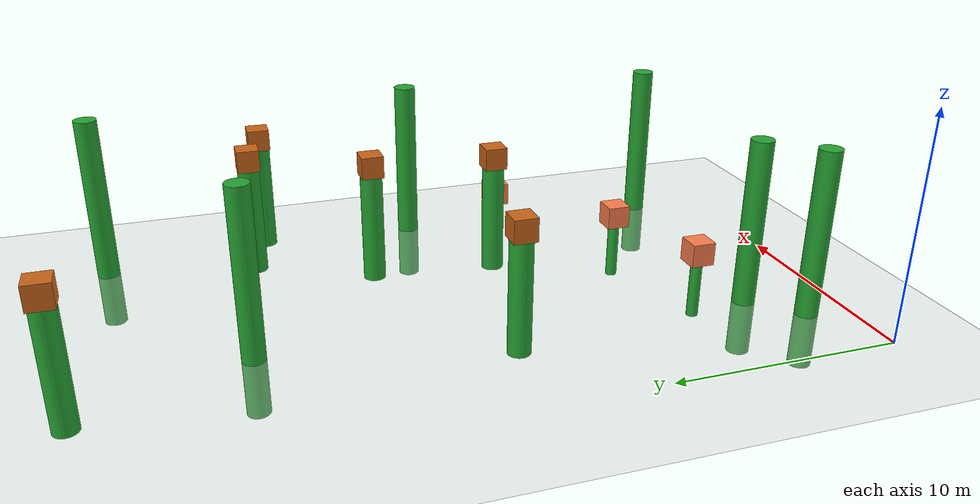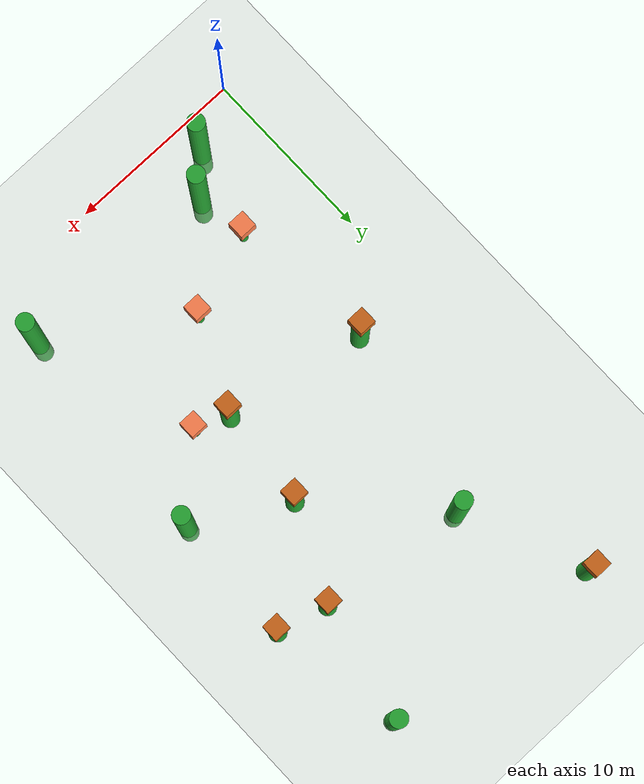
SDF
<sdf version="1.7">
 <world name="default">
  <model name="ground_plane">
   <static>1</static>
   <link name="link">
    <collision name="collision">
     <geometry><plane><normal>0 0 1</normal><size>100 100</size></plane></geometry>
     <surface>
      <contact><collide_bitmask>65535</collide_bitmask></contact>
      <friction><ode><mu>100</mu><mu2>50</mu2></ode></friction>
     </surface>
    </collision>
    <visual name="visual">
     <cast_shadows>0</cast_shadows>
     <geometry><plane><normal>0 0 1</normal><size>100 100</size></plane></geometry>
     <material>
      <script><uri>file://media/materials/scripts/gazebo.material</uri><name>Gazebo/Grey</name></script>
     </material>
    </visual>
   </link>
  </model>
  <model name="unit_cylinder_green_2_clone_clone_11">
   <link name="link">
    <inertial>
     <mass>1</mass>
     <inertia><ixx>0.145833</ixx><ixy>0</ixy><ixz>0</ixz><iyy>0.145833</iyy><iyz>0</iyz><izz>0.125</izz></inertia>
    </inertial>
    <visual name="visual">
     <geometry><cylinder><radius>0.5</radius><length>10</length></cylinder></geometry>
     <material>
      <script><name>Gazebo/Green</name><uri>file://media/materials/scripts/gazebo.material</uri></script>
      <shader type="pixel"><normal_map>__default__</normal_map></shader>
      <ambient>0 1 0.3 1</ambient>
      <diffuse>0.7 0.7 0.7 1</diffuse>
      <specular>0.01 0.01 0.01 1</specular>
      <emissive>0 0 0 1</emissive>
     </material>
    </visual>
    <collision name="collision">
     <geometry><cylinder><radius>0.5</radius><length>5</length></cylinder></geometry>
     <surface>
      <friction>
       <ode><mu>1</mu><mu2>1</mu2><fdir1>0 0 0</fdir1><slip1>0</slip1><slip2>0</slip2></ode>
       <torsional>
        <coefficient>1</coefficient>
        <patch_radius>0</patch_radius>
        <surface_radius>0</surface_radius>
        <use_patch_radius>1</use_patch_radius>
        <ode><slip>0</slip></ode>
       </torsional>
      </friction>
      <bounce><restitution_coefficient>0</restitution_coefficient><threshold>1e+06</threshold></bounce>
      <contact>
       <collide_without_contact>0</collide_without_contact>
       <collide_without_contact_bitmask>1</collide_without_contact_bitmask>
       <collide_bitmask>1</collide_bitmask>
       <ode>
        <soft_cfm>0</soft_cfm>
        <soft_erp>0.2</soft_erp>
        <kp>1e+13</kp>
        <kd>1</kd>
        <max_vel>0.01</max_vel>
        <min_depth>0</min_depth>
       </ode>
       <bullet>
        <split_impulse>1</split_impulse>
        <split_impulse_penetration_threshold>-0.01</split_impulse_penetration_threshold>
        <soft_cfm>0</soft_cfm>
        <soft_erp>0.2</soft_erp>
        <kp>1e+13</kp>
        <kd>1</kd>
       </bullet>
      </contact>
     </surface>
    </collision>
   </link>
   <static>1</static>
   <pose>6.6281 25.0703 2.5 0 0 -0.000967</pose>
  </model>
  <model name="unit_cylinder_green_2_clone_clone_17">
   <link name="link">
    <inertial>
     <mass>1</mass>
     <inertia><ixx>0.145833</ixx><ixy>0</ixy><ixz>0</ixz><iyy>0.145833</iyy><iyz>0</iyz><izz>0.125</izz></inertia>
    </inertial>
    <visual name="visual">
     <geometry><cylinder><radius>0.5</radius><length>10</length></cylinder></geometry>
     <material>
      <script><name>Gazebo/Green</name><uri>file://media/materials/scripts/gazebo.material</uri></script>
      <shader type="pixel"><normal_map>__default__</normal_map></shader>
      <ambient>0 1 0.3 1</ambient>
      <diffuse>0.7 0.7 0.7 1</diffuse>
      <specular>0.01 0.01 0.01 1</specular>
      <emissive>0 0 0 1</emissive>
     </material>
    </visual>
    <collision name="collision">
     <geometry><cylinder><radius>0.5</radius><length>5</length></cylinder></geometry>
     <surface>
      <friction>
       <ode><mu>1</mu><mu2>1</mu2><fdir1>0 0 0</fdir1><slip1>0</slip1><slip2>0</slip2></ode>
       <torsional>
        <coefficient>1</coefficient>
        <patch_radius>0</patch_radius>
        <surface_radius>0</surface_radius>
        <use_patch_radius>1</use_patch_radius>
        <ode><slip>0</slip></ode>
       </torsional>
      </friction>
      <bounce><restitution_coefficient>0</restitution_coefficient><threshold>1e+06</threshold></bounce>
      <contact>
       <collide_without_contact>0</collide_without_contact>
       <collide_without_contact_bitmask>1</collide_without_contact_bitmask>
       <collide_bitmask>1</collide_bitmask>
       <ode>
        <soft_cfm>0</soft_cfm>
        <soft_erp>0.2</soft_erp>
        <kp>1e+13</kp>
        <kd>1</kd>
        <max_vel>0.01</max_vel>
        <min_depth>0</min_depth>
       </ode>
       <bullet>
        <split_impulse>1</split_impulse>
        <split_impulse_penetration_threshold>-0.01</split_impulse_penetration_threshold>
        <soft_cfm>0</soft_cfm>
        <soft_erp>0.2</soft_erp>
        <kp>1e+13</kp>
        <kd>1</kd>
       </bullet>
      </contact>
     </surface>
    </collision>
   </link>
   <static>1</static>
   <pose>16.5379 3.56067 2.5 0 0 -0.000967</pose>
  </model>
  <model name="unit_cylinder_green_2_clone_clone_18">
   <link name="link">
    <inertial>
     <mass>1</mass>
     <inertia><ixx>0.145833</ixx><ixy>0</ixy><ixz>0</ixz><iyy>0.145833</iyy><iyz>0</iyz><izz>0.125</izz></inertia>
    </inertial>
    <visual name="visual">
     <geometry><cylinder><radius>0.5</radius><length>10</length></cylinder></geometry>
     <material>
      <script><name>Gazebo/Green</name><uri>file://media/materials/scripts/gazebo.material</uri></script>
      <shader type="pixel"><normal_map>__default__</normal_map></shader>
      <ambient>0 1 0.3 1</ambient>
      <diffuse>0.7 0.7 0.7 1</diffuse>
      <specular>0.01 0.01 0.01 1</specular>
      <emissive>0 0 0 1</emissive>
     </material>
    </visual>
    <collision name="collision">
     <geometry><cylinder><radius>0.5</radius><length>5</length></cylinder></geometry>
     <surface>
      <friction>
       <ode><mu>1</mu><mu2>1</mu2><fdir1>0 0 0</fdir1><slip1>0</slip1><slip2>0</slip2></ode>
       <torsional>
        <coefficient>1</coefficient>
        <patch_radius>0</patch_radius>
        <surface_radius>0</surface_radius>
        <use_patch_radius>1</use_patch_radius>
        <ode><slip>0</slip></ode>
       </torsional>
      </friction>
      <bounce><restitution_coefficient>0</restitution_coefficient><threshold>1e+06</threshold></bounce>
      <contact>
       <collide_without_contact>0</collide_without_contact>
       <collide_without_contact_bitmask>1</collide_without_contact_bitmask>
       <collide_bitmask>1</collide_bitmask>
       <ode>
        <soft_cfm>0</soft_cfm>
        <soft_erp>0.2</soft_erp>
        <kp>1e+13</kp>
        <kd>1</kd>
        <max_vel>0.01</max_vel>
        <min_depth>0</min_depth>
       </ode>
       <bullet>
        <split_impulse>1</split_impulse>
        <split_impulse_penetration_threshold>-0.01</split_impulse_penetration_threshold>
        <soft_cfm>0</soft_cfm>
        <soft_erp>0.2</soft_erp>
        <kp>1e+13</kp>
        <kd>1</kd>
       </bullet>
      </contact>
     </surface>
    </collision>
   </link>
   <static>1</static>
   <pose>17.402 16.0401 2.5 0 0 -0.000967</pose>
  </model>
  <model name="unit_cylinder_green_2_clone_clone_19">
   <link name="link">
    <inertial>
     <mass>1</mass>
     <inertia><ixx>0.145833</ixx><ixy>0</ixy><ixz>0</ixz><iyy>0.145833</iyy><iyz>0</iyz><izz>0.125</izz></inertia>
    </inertial>
    <visual name="visual">
     <geometry><cylinder><radius>0.5</radius><length>10</length></cylinder></geometry>
     <material>
      <script><name>Gazebo/Green</name><uri>file://media/materials/scripts/gazebo.material</uri></script>
      <shader type="pixel"><normal_map>__default__</normal_map></shader>
      <ambient>0 1 0.3 1</ambient>
      <diffuse>0.7 0.7 0.7 1</diffuse>
      <specular>0.01 0.01 0.01 1</specular>
      <emissive>0 0 0 1</emissive>
     </material>
    </visual>
    <collision name="collision">
     <geometry><cylinder><radius>0.5</radius><length>5</length></cylinder></geometry>
     <surface>
      <friction>
       <ode><mu>1</mu><mu2>1</mu2><fdir1>0 0 0</fdir1><slip1>0</slip1><slip2>0</slip2></ode>
       <torsional>
        <coefficient>1</coefficient>
        <patch_radius>0</patch_radius>
        <surface_radius>0</surface_radius>
        <use_patch_radius>1</use_patch_radius>
        <ode><slip>0</slip></ode>
       </torsional>
      </friction>
      <bounce><restitution_coefficient>0</restitution_coefficient><threshold>1e+06</threshold></bounce>
      <contact>
       <collide_without_contact>0</collide_without_contact>
       <collide_without_contact_bitmask>1</collide_without_contact_bitmask>
       <collide_bitmask>1</collide_bitmask>
       <ode>
        <soft_cfm>0</soft_cfm>
        <soft_erp>0.2</soft_erp>
        <kp>1e+13</kp>
        <kd>1</kd>
        <max_vel>0.01</max_vel>
        <min_depth>0</min_depth>
       </ode>
       <bullet>
        <split_impulse>1</split_impulse>
        <split_impulse_penetration_threshold>-0.01</split_impulse_penetration_threshold>
        <soft_cfm>0</soft_cfm>
        <soft_erp>0.2</soft_erp>
        <kp>1e+13</kp>
        <kd>1</kd>
       </bullet>
      </contact>
     </surface>
    </collision>
   </link>
   <static>1</static>
   <pose>16.3785 30.7272 2.5 0 0 -0.000967</pose>
  </model>
  <model name="unit_cylinder_green_2_clone_clone_3_clone">
   <link name="link">
    <inertial>
     <mass>1</mass>
     <inertia><ixx>0.145833</ixx><ixy>0</ixy><ixz>0</ixz><iyy>0.145833</iyy><iyz>0</iyz><izz>0.125</izz></inertia>
    </inertial>
    <visual name="visual">
     <geometry><cylinder><radius>0.5</radius><length>10</length></cylinder></geometry>
     <material>
      <script><name>Gazebo/Green</name><uri>file://media/materials/scripts/gazebo.material</uri></script>
      <shader type="pixel"><normal_map>__default__</normal_map></shader>
      <ambient>0 1 0.3 1</ambient>
      <diffuse>0.7 0.7 0.7 1</diffuse>
      <specular>0.01 0.01 0.01 1</specular>
      <emissive>0 0 0 1</emissive>
     </material>
    </visual>
    <collision name="collision">
     <geometry><cylinder><radius>0.5</radius><length>5</length></cylinder></geometry>
     <surface>
      <friction>
       <ode><mu>1</mu><mu2>1</mu2><fdir1>0 0 0</fdir1><slip1>0</slip1><slip2>0</slip2></ode>
       <torsional>
        <coefficient>1</coefficient>
        <patch_radius>0</patch_radius>
        <surface_radius>0</surface_radius>
        <use_patch_radius>1</use_patch_radius>
        <ode><slip>0</slip></ode>
       </torsional>
      </friction>
      <bounce><restitution_coefficient>0</restitution_coefficient><threshold>1e+06</threshold></bounce>
      <contact>
       <collide_without_contact>0</collide_without_contact>
       <collide_without_contact_bitmask>1</collide_without_contact_bitmask>
       <collide_bitmask>1</collide_bitmask>
       <ode>
        <soft_cfm>0</soft_cfm>
        <soft_erp>0.2</soft_erp>
        <kp>1e+13</kp>
        <kd>1</kd>
        <max_vel>0.01</max_vel>
        <min_depth>0</min_depth>
       </ode>
       <bullet>
        <split_impulse>1</split_impulse>
        <split_impulse_penetration_threshold>-0.01</split_impulse_penetration_threshold>
        <soft_cfm>0</soft_cfm>
        <soft_erp>0.2</soft_erp>
        <kp>1e+13</kp>
        <kd>1</kd>
       </bullet>
      </contact>
     </surface>
    </collision>
   </link>
   <static>1</static>
   <pose>3.32613 1.87442 2.5 0 0 -0.000949</pose>
  </model>
  <model name="unit_cylinder_green_2_clone_clone_3_clone_clone">
   <link name="link">
    <inertial>
     <mass>1</mass>
     <inertia><ixx>0.145833</ixx><ixy>0</ixy><ixz>0</ixz><iyy>0.145833</iyy><iyz>0</iyz><izz>0.125</izz></inertia>
    </inertial>
    <visual name="visual">
     <geometry><cylinder><radius>0.5</radius><length>10</length></cylinder></geometry>
     <material>
      <script><name>Gazebo/Green</name><uri>file://media/materials/scripts/gazebo.material</uri></script>
      <shader type="pixel"><normal_map>__default__</normal_map></shader>
      <ambient>0 1 0.3 1</ambient>
      <diffuse>0.7 0.7 0.7 1</diffuse>
      <specular>0.01 0.01 0.01 1</specular>
      <emissive>0 0 0 1</emissive>
     </material>
    </visual>
    <collision name="collision">
     <geometry><cylinder><radius>0.5</radius><length>5</length></cylinder></geometry>
     <surface>
      <friction>
       <ode><mu>1</mu><mu2>1</mu2><fdir1>0 0 0</fdir1><slip1>0</slip1><slip2>0</slip2></ode>
       <torsional>
        <coefficient>1</coefficient>
        <patch_radius>0</patch_radius>
        <surface_radius>0</surface_radius>
        <use_patch_radius>1</use_patch_radius>
        <ode><slip>0</slip></ode>
       </torsional>
      </friction>
      <bounce><restitution_coefficient>0</restitution_coefficient><threshold>1e+06</threshold></bounce>
      <contact>
       <collide_without_contact>0</collide_without_contact>
       <collide_without_contact_bitmask>1</collide_without_contact_bitmask>
       <collide_bitmask>1</collide_bitmask>
       <ode>
        <soft_cfm>0</soft_cfm>
        <soft_erp>0.2</soft_erp>
        <kp>1e+13</kp>
        <kd>1</kd>
        <max_vel>0.01</max_vel>
        <min_depth>0</min_depth>
       </ode>
       <bullet>
        <split_impulse>1</split_impulse>
        <split_impulse_penetration_threshold>-0.01</split_impulse_penetration_threshold>
        <soft_cfm>0</soft_cfm>
        <soft_erp>0.2</soft_erp>
        <kp>1e+13</kp>
        <kd>1</kd>
       </bullet>
      </contact>
     </surface>
    </collision>
   </link>
   <static>1</static>
   <pose>5.14953 3.84567 2.5 0 0 -0.000933</pose>
  </model>
  <model name="unit_cylinder_green_2_clone_clone_3_clone_0_clone_0_clone_3">
   <link name="link">
    <inertial>
     <mass>1</mass>
     <inertia><ixx>0.145833</ixx><ixy>0</ixy><ixz>0</ixz><iyy>0.145833</iyy><iyz>0</iyz><izz>0.125</izz></inertia>
    </inertial>
    <visual name="visual">
     <geometry><cylinder><radius>0.5</radius><length>5</length></cylinder></geometry>
     <material>
      <script><name>Gazebo/Green</name><uri>file://media/materials/scripts/gazebo.material</uri></script>
      <shader type="pixel"><normal_map>__default__</normal_map></shader>
      <ambient>0 1 0.3 1</ambient>
      <diffuse>0.7 0.7 0.7 1</diffuse>
      <specular>0.01 0.01 0.01 1</specular>
      <emissive>0 0 0 1</emissive>
     </material>
    </visual>
    <collision name="collision">
     <geometry><cylinder><radius>0.5</radius><length>5</length></cylinder></geometry>
     <surface>
      <friction>
       <ode><mu>1</mu><mu2>1</mu2><fdir1>0 0 0</fdir1><slip1>0</slip1><slip2>0</slip2></ode>
       <torsional>
        <coefficient>1</coefficient>
        <patch_radius>0</patch_radius>
        <surface_radius>0</surface_radius>
        <use_patch_radius>1</use_patch_radius>
        <ode><slip>0</slip></ode>
       </torsional>
      </friction>
      <bounce><restitution_coefficient>0</restitution_coefficient><threshold>1e+06</threshold></bounce>
      <contact>
       <collide_without_contact>0</collide_without_contact>
       <collide_without_contact_bitmask>1</collide_without_contact_bitmask>
       <collide_bitmask>1</collide_bitmask>
       <ode>
        <soft_cfm>0</soft_cfm>
        <soft_erp>0.2</soft_erp>
        <kp>1e+13</kp>
        <kd>1</kd>
        <max_vel>0.01</max_vel>
        <min_depth>0</min_depth>
       </ode>
       <bullet>
        <split_impulse>1</split_impulse>
        <split_impulse_penetration_threshold>-0.01</split_impulse_penetration_threshold>
        <soft_cfm>0</soft_cfm>
        <soft_erp>0.2</soft_erp>
        <kp>1e+13</kp>
        <kd>1</kd>
       </bullet>
      </contact>
     </surface>
    </collision>
   </link>
   <link name="link_3">
    <inertial>
     <mass>1</mass>
     <inertia>
      <ixx>0.166667</ixx>
      <ixy>0</ixy>
      <ixz>0</ixz>
      <iyy>0.166667</iyy>
      <iyz>0</iyz>
      <izz>0.166667</izz>
     </inertia>
    </inertial>
    <pose>0 0 3 0 -0 0.000935</pose>
    <visual name="visual">
     <geometry><box><size>1 1 1</size></box></geometry>
     <material>
      <lighting>1</lighting>
      <script><uri>file://media/materials/scripts/gazebo.material</uri><name>Gazebo/Grey</name></script>
      <shader type="pixel"><normal_map>__default__</normal_map></shader>
      <ambient>0.8 0.4 0.1 1</ambient>
      <diffuse>0.7 0.7 0.7 1</diffuse>
      <specular>0.01 0.01 0.01 1</specular>
      <emissive>0 0 0 1</emissive>
     </material>
    </visual>
    <collision name="collision">
     <geometry><box><size>1 1 1</size></box></geometry>
     <surface>
      <friction>
       <ode><mu>1</mu><mu2>1</mu2><fdir1>0 0 0</fdir1><slip1>0</slip1><slip2>0</slip2></ode>
       <torsional>
        <coefficient>1</coefficient>
        <patch_radius>0</patch_radius>
        <surface_radius>0</surface_radius>
        <use_patch_radius>1</use_patch_radius>
        <ode><slip>0</slip></ode>
       </torsional>
      </friction>
      <bounce><restitution_coefficient>0</restitution_coefficient><threshold>1e+06</threshold></bounce>
      <contact>
       <collide_without_contact>0</collide_without_contact>
       <collide_without_contact_bitmask>1</collide_without_contact_bitmask>
       <collide_bitmask>1</collide_bitmask>
       <ode>
        <soft_cfm>0</soft_cfm>
        <soft_erp>0.2</soft_erp>
        <kp>1e+13</kp>
        <kd>1</kd>
        <max_vel>0.01</max_vel>
        <min_depth>0</min_depth>
       </ode>
       <bullet>
        <split_impulse>1</split_impulse>
        <split_impulse_penetration_threshold>-0.01</split_impulse_penetration_threshold>
        <soft_cfm>0</soft_cfm>
        <soft_erp>0.2</soft_erp>
        <kp>1e+13</kp>
        <kd>1</kd>
       </bullet>
      </contact>
     </surface>
    </collision>
   </link>
   <static>1</static>
   <pose>14.8559 24.0346 2.49999 0 0 -0.000935</pose>
  </model>
  <model name="unit_cylinder_green_2_clone_clone_3_clone_0_clone_0_clone_30">
   <link name="link">
    <inertial>
     <mass>1</mass>
     <inertia><ixx>0.145833</ixx><ixy>0</ixy><ixz>0</ixz><iyy>0.145833</iyy><iyz>0</iyz><izz>0.125</izz></inertia>
    </inertial>
    <visual name="visual">
     <geometry><cylinder><radius>0.5</radius><length>5</length></cylinder></geometry>
     <material>
      <script><name>Gazebo/Green</name><uri>file://media/materials/scripts/gazebo.material</uri></script>
      <shader type="pixel"><normal_map>__default__</normal_map></shader>
      <ambient>0 1 0.3 1</ambient>
      <diffuse>0.7 0.7 0.7 1</diffuse>
      <specular>0.01 0.01 0.01 1</specular>
      <emissive>0 0 0 1</emissive>
     </material>
    </visual>
    <collision name="collision">
     <geometry><cylinder><radius>0.5</radius><length>5</length></cylinder></geometry>
     <surface>
      <friction>
       <ode><mu>1</mu><mu2>1</mu2><fdir1>0 0 0</fdir1><slip1>0</slip1><slip2>0</slip2></ode>
       <torsional>
        <coefficient>1</coefficient>
        <patch_radius>0</patch_radius>
        <surface_radius>0</surface_radius>
        <use_patch_radius>1</use_patch_radius>
        <ode><slip>0</slip></ode>
       </torsional>
      </friction>
      <bounce><restitution_coefficient>0</restitution_coefficient><threshold>1e+06</threshold></bounce>
      <contact>
       <collide_without_contact>0</collide_without_contact>
       <collide_without_contact_bitmask>1</collide_without_contact_bitmask>
       <collide_bitmask>1</collide_bitmask>
       <ode>
        <soft_cfm>0</soft_cfm>
        <soft_erp>0.2</soft_erp>
        <kp>1e+13</kp>
        <kd>1</kd>
        <max_vel>0.01</max_vel>
        <min_depth>0</min_depth>
       </ode>
       <bullet>
        <split_impulse>1</split_impulse>
        <split_impulse_penetration_threshold>-0.01</split_impulse_penetration_threshold>
        <soft_cfm>0</soft_cfm>
        <soft_erp>0.2</soft_erp>
        <kp>1e+13</kp>
        <kd>1</kd>
       </bullet>
      </contact>
     </surface>
    </collision>
   </link>
   <link name="link_3">
    <inertial>
     <mass>1</mass>
     <inertia>
      <ixx>0.166667</ixx>
      <ixy>0</ixy>
      <ixz>0</ixz>
      <iyy>0.166667</iyy>
      <iyz>0</iyz>
      <izz>0.166667</izz>
     </inertia>
    </inertial>
    <pose>0 0 3 0 -0 0.000935</pose>
    <visual name="visual">
     <geometry><box><size>1 1 1</size></box></geometry>
     <material>
      <lighting>1</lighting>
      <script><uri>file://media/materials/scripts/gazebo.material</uri><name>Gazebo/Grey</name></script>
      <shader type="pixel"><normal_map>__default__</normal_map></shader>
      <ambient>0.8 0.4 0.1 1</ambient>
      <diffuse>0.7 0.7 0.7 1</diffuse>
      <specular>0.01 0.01 0.01 1</specular>
      <emissive>0 0 0 1</emissive>
     </material>
    </visual>
    <collision name="collision">
     <geometry><box><size>1 1 1</size></box></geometry>
     <surface>
      <friction>
       <ode><mu>1</mu><mu2>1</mu2><fdir1>0 0 0</fdir1><slip1>0</slip1><slip2>0</slip2></ode>
       <torsional>
        <coefficient>1</coefficient>
        <patch_radius>0</patch_radius>
        <surface_radius>0</surface_radius>
        <use_patch_radius>1</use_patch_radius>
        <ode><slip>0</slip></ode>
       </torsional>
      </friction>
      <bounce><restitution_coefficient>0</restitution_coefficient><threshold>1e+06</threshold></bounce>
      <contact>
       <collide_without_contact>0</collide_without_contact>
       <collide_without_contact_bitmask>1</collide_without_contact_bitmask>
       <collide_bitmask>1</collide_bitmask>
       <ode>
        <soft_cfm>0</soft_cfm>
        <soft_erp>0.2</soft_erp>
        <kp>1e+13</kp>
        <kd>1</kd>
        <max_vel>0.01</max_vel>
        <min_depth>0</min_depth>
       </ode>
       <bullet>
        <split_impulse>1</split_impulse>
        <split_impulse_penetration_threshold>-0.01</split_impulse_penetration_threshold>
        <soft_cfm>0</soft_cfm>
        <soft_erp>0.2</soft_erp>
        <kp>1e+13</kp>
        <kd>1</kd>
       </bullet>
      </contact>
     </surface>
    </collision>
   </link>
   <static>1</static>
   <pose>3.96881 14.8577 2.49999 0 0 -0.000935</pose>
  </model>
  <model name="unit_cylinder_green_2_clone_clone_3_clone_0_clone_0_clone_32">
   <link name="link">
    <inertial>
     <mass>1</mass>
     <inertia><ixx>0.145833</ixx><ixy>0</ixy><ixz>0</ixz><iyy>0.145833</iyy><iyz>0</iyz><izz>0.125</izz></inertia>
    </inertial>
    <visual name="visual">
     <geometry><cylinder><radius>0.5</radius><length>5</length></cylinder></geometry>
     <material>
      <script><name>Gazebo/Green</name><uri>file://media/materials/scripts/gazebo.material</uri></script>
      <shader type="pixel"><normal_map>__default__</normal_map></shader>
      <ambient>0 1 0.3 1</ambient>
      <diffuse>0.7 0.7 0.7 1</diffuse>
      <specular>0.01 0.01 0.01 1</specular>
      <emissive>0 0 0 1</emissive>
     </material>
    </visual>
    <collision name="collision">
     <geometry><cylinder><radius>0.5</radius><length>5</length></cylinder></geometry>
     <surface>
      <friction>
       <ode><mu>1</mu><mu2>1</mu2><fdir1>0 0 0</fdir1><slip1>0</slip1><slip2>0</slip2></ode>
       <torsional>
        <coefficient>1</coefficient>
        <patch_radius>0</patch_radius>
        <surface_radius>0</surface_radius>
        <use_patch_radius>1</use_patch_radius>
        <ode><slip>0</slip></ode>
       </torsional>
      </friction>
      <bounce><restitution_coefficient>0</restitution_coefficient><threshold>1e+06</threshold></bounce>
      <contact>
       <collide_without_contact>0</collide_without_contact>
       <collide_without_contact_bitmask>1</collide_without_contact_bitmask>
       <collide_bitmask>1</collide_bitmask>
       <ode>
        <soft_cfm>0</soft_cfm>
        <soft_erp>0.2</soft_erp>
        <kp>1e+13</kp>
        <kd>1</kd>
        <max_vel>0.01</max_vel>
        <min_depth>0</min_depth>
       </ode>
       <bullet>
        <split_impulse>1</split_impulse>
        <split_impulse_penetration_threshold>-0.01</split_impulse_penetration_threshold>
        <soft_cfm>0</soft_cfm>
        <soft_erp>0.2</soft_erp>
        <kp>1e+13</kp>
        <kd>1</kd>
       </bullet>
      </contact>
     </surface>
    </collision>
   </link>
   <link name="link_3">
    <inertial>
     <mass>1</mass>
     <inertia>
      <ixx>0.166667</ixx>
      <ixy>0</ixy>
      <ixz>0</ixz>
      <iyy>0.166667</iyy>
      <iyz>0</iyz>
      <izz>0.166667</izz>
     </inertia>
    </inertial>
    <pose>0 0 3 0 -0 0.000935</pose>
    <visual name="visual">
     <geometry><box><size>1 1 1</size></box></geometry>
     <material>
      <lighting>1</lighting>
      <script><uri>file://media/materials/scripts/gazebo.material</uri><name>Gazebo/Grey</name></script>
      <shader type="pixel"><normal_map>__default__</normal_map></shader>
      <ambient>0.8 0.4 0.1 1</ambient>
      <diffuse>0.7 0.7 0.7 1</diffuse>
      <specular>0.01 0.01 0.01 1</specular>
      <emissive>0 0 0 1</emissive>
     </material>
    </visual>
    <collision name="collision">
     <geometry><box><size>1 1 1</size></box></geometry>
     <surface>
      <friction>
       <ode><mu>1</mu><mu2>1</mu2><fdir1>0 0 0</fdir1><slip1>0</slip1><slip2>0</slip2></ode>
       <torsional>
        <coefficient>1</coefficient>
        <patch_radius>0</patch_radius>
        <surface_radius>0</surface_radius>
        <use_patch_radius>1</use_patch_radius>
        <ode><slip>0</slip></ode>
       </torsional>
      </friction>
      <bounce><restitution_coefficient>0</restitution_coefficient><threshold>1e+06</threshold></bounce>
      <contact>
       <collide_without_contact>0</collide_without_contact>
       <collide_without_contact_bitmask>1</collide_without_contact_bitmask>
       <collide_bitmask>1</collide_bitmask>
       <ode>
        <soft_cfm>0</soft_cfm>
        <soft_erp>0.2</soft_erp>
        <kp>1e+13</kp>
        <kd>1</kd>
        <max_vel>0.01</max_vel>
        <min_depth>0</min_depth>
       </ode>
       <bullet>
        <split_impulse>1</split_impulse>
        <split_impulse_penetration_threshold>-0.01</split_impulse_penetration_threshold>
        <soft_cfm>0</soft_cfm>
        <soft_erp>0.2</soft_erp>
        <kp>1e+13</kp>
        <kd>1</kd>
       </bullet>
      </contact>
     </surface>
    </collision>
   </link>
   <static>1</static>
   <pose>3.76491 31.8946 2.49999 0 0 -0.000935</pose>
  </model>
  <model name="unit_cylinder_green_2_clone_clone_3_clone_0_clone_0_clone_33">
   <link name="link">
    <inertial>
     <mass>1</mass>
     <inertia><ixx>0.145833</ixx><ixy>0</ixy><ixz>0</ixz><iyy>0.145833</iyy><iyz>0</iyz><izz>0.125</izz></inertia>
    </inertial>
    <visual name="visual">
     <geometry><cylinder><radius>0.5</radius><length>5</length></cylinder></geometry>
     <material>
      <script><name>Gazebo/Green</name><uri>file://media/materials/scripts/gazebo.material</uri></script>
      <shader type="pixel"><normal_map>__default__</normal_map></shader>
      <ambient>0 1 0.3 1</ambient>
      <diffuse>0.7 0.7 0.7 1</diffuse>
      <specular>0.01 0.01 0.01 1</specular>
      <emissive>0 0 0 1</emissive>
     </material>
    </visual>
    <collision name="collision">
     <geometry><cylinder><radius>0.5</radius><length>5</length></cylinder></geometry>
     <surface>
      <friction>
       <ode><mu>1</mu><mu2>1</mu2><fdir1>0 0 0</fdir1><slip1>0</slip1><slip2>0</slip2></ode>
       <torsional>
        <coefficient>1</coefficient>
        <patch_radius>0</patch_radius>
        <surface_radius>0</surface_radius>
        <use_patch_radius>1</use_patch_radius>
        <ode><slip>0</slip></ode>
       </torsional>
      </friction>
      <bounce><restitution_coefficient>0</restitution_coefficient><threshold>1e+06</threshold></bounce>
      <contact>
       <collide_without_contact>0</collide_without_contact>
       <collide_without_contact_bitmask>1</collide_without_contact_bitmask>
       <collide_bitmask>1</collide_bitmask>
       <ode>
        <soft_cfm>0</soft_cfm>
        <soft_erp>0.2</soft_erp>
        <kp>1e+13</kp>
        <kd>1</kd>
        <max_vel>0.01</max_vel>
        <min_depth>0</min_depth>
       </ode>
       <bullet>
        <split_impulse>1</split_impulse>
        <split_impulse_penetration_threshold>-0.01</split_impulse_penetration_threshold>
        <soft_cfm>0</soft_cfm>
        <soft_erp>0.2</soft_erp>
        <kp>1e+13</kp>
        <kd>1</kd>
       </bullet>
      </contact>
     </surface>
    </collision>
   </link>
   <link name="link_3">
    <inertial>
     <mass>1</mass>
     <inertia>
      <ixx>0.166667</ixx>
      <ixy>0</ixy>
      <ixz>0</ixz>
      <iyy>0.166667</iyy>
      <iyz>0</iyz>
      <izz>0.166667</izz>
     </inertia>
    </inertial>
    <pose>0 0 3 0 -0 0.000935</pose>
    <visual name="visual">
     <geometry><box><size>1 1 1</size></box></geometry>
     <material>
      <lighting>1</lighting>
      <script><uri>file://media/materials/scripts/gazebo.material</uri><name>Gazebo/Grey</name></script>
      <shader type="pixel"><normal_map>__default__</normal_map></shader>
      <ambient>0.8 0.4 0.1 1</ambient>
      <diffuse>0.7 0.7 0.7 1</diffuse>
      <specular>0.01 0.01 0.01 1</specular>
      <emissive>0 0 0 1</emissive>
     </material>
    </visual>
    <collision name="collision">
     <geometry><box><size>1 1 1</size></box></geometry>
     <surface>
      <friction>
       <ode><mu>1</mu><mu2>1</mu2><fdir1>0 0 0</fdir1><slip1>0</slip1><slip2>0</slip2></ode>
       <torsional>
        <coefficient>1</coefficient>
        <patch_radius>0</patch_radius>
        <surface_radius>0</surface_radius>
        <use_patch_radius>1</use_patch_radius>
        <ode><slip>0</slip></ode>
       </torsional>
      </friction>
      <bounce><restitution_coefficient>0</restitution_coefficient><threshold>1e+06</threshold></bounce>
      <contact>
       <collide_without_contact>0</collide_without_contact>
       <collide_without_contact_bitmask>1</collide_without_contact_bitmask>
       <collide_bitmask>1</collide_bitmask>
       <ode>
        <soft_cfm>0</soft_cfm>
        <soft_erp>0.2</soft_erp>
        <kp>1e+13</kp>
        <kd>1</kd>
        <max_vel>0.01</max_vel>
        <min_depth>0</min_depth>
       </ode>
       <bullet>
        <split_impulse>1</split_impulse>
        <split_impulse_penetration_threshold>-0.01</split_impulse_penetration_threshold>
        <soft_cfm>0</soft_cfm>
        <soft_erp>0.2</soft_erp>
        <kp>1e+13</kp>
        <kd>1</kd>
       </bullet>
      </contact>
     </surface>
    </collision>
   </link>
   <static>1</static>
   <pose>17.6841 23.2589 2.49999 0 0 -0.000935</pose>
  </model>
  <model name="unit_cylinder_green_2_clone_clone_3_clone_0_clone_0_clone_34">
   <link name="link">
    <inertial>
     <mass>1</mass>
     <inertia><ixx>0.145833</ixx><ixy>0</ixy><ixz>0</ixz><iyy>0.145833</iyy><iyz>0</iyz><izz>0.125</izz></inertia>
    </inertial>
    <visual name="visual">
     <geometry><cylinder><radius>0.5</radius><length>5</length></cylinder></geometry>
     <material>
      <script><name>Gazebo/Green</name><uri>file://media/materials/scripts/gazebo.material</uri></script>
      <shader type="pixel"><normal_map>__default__</normal_map></shader>
      <ambient>0 1 0.3 1</ambient>
      <diffuse>0.7 0.7 0.7 1</diffuse>
      <specular>0.01 0.01 0.01 1</specular>
      <emissive>0 0 0 1</emissive>
     </material>
    </visual>
    <collision name="collision">
     <geometry><cylinder><radius>0.5</radius><length>5</length></cylinder></geometry>
     <surface>
      <friction>
       <ode><mu>1</mu><mu2>1</mu2><fdir1>0 0 0</fdir1><slip1>0</slip1><slip2>0</slip2></ode>
       <torsional>
        <coefficient>1</coefficient>
        <patch_radius>0</patch_radius>
        <surface_radius>0</surface_radius>
        <use_patch_radius>1</use_patch_radius>
        <ode><slip>0</slip></ode>
       </torsional>
      </friction>
      <bounce><restitution_coefficient>0</restitution_coefficient><threshold>1e+06</threshold></bounce>
      <contact>
       <collide_without_contact>0</collide_without_contact>
       <collide_without_contact_bitmask>1</collide_without_contact_bitmask>
       <collide_bitmask>1</collide_bitmask>
       <ode>
        <soft_cfm>0</soft_cfm>
        <soft_erp>0.2</soft_erp>
        <kp>1e+13</kp>
        <kd>1</kd>
        <max_vel>0.01</max_vel>
        <min_depth>0</min_depth>
       </ode>
       <bullet>
        <split_impulse>1</split_impulse>
        <split_impulse_penetration_threshold>-0.01</split_impulse_penetration_threshold>
        <soft_cfm>0</soft_cfm>
        <soft_erp>0.2</soft_erp>
        <kp>1e+13</kp>
        <kd>1</kd>
       </bullet>
      </contact>
     </surface>
    </collision>
   </link>
   <link name="link_3">
    <inertial>
     <mass>1</mass>
     <inertia>
      <ixx>0.166667</ixx>
      <ixy>0</ixy>
      <ixz>0</ixz>
      <iyy>0.166667</iyy>
      <iyz>0</iyz>
      <izz>0.166667</izz>
     </inertia>
    </inertial>
    <pose>0 0 3 0 -0 0.000935</pose>
    <visual name="visual">
     <geometry><box><size>1 1 1</size></box></geometry>
     <material>
      <lighting>1</lighting>
      <script><uri>file://media/materials/scripts/gazebo.material</uri><name>Gazebo/Grey</name></script>
      <shader type="pixel"><normal_map>__default__</normal_map></shader>
      <ambient>0.8 0.4 0.1 1</ambient>
      <diffuse>0.7 0.7 0.7 1</diffuse>
      <specular>0.01 0.01 0.01 1</specular>
      <emissive>0 0 0 1</emissive>
     </material>
    </visual>
    <collision name="collision">
     <geometry><box><size>1 1 1</size></box></geometry>
     <surface>
      <friction>
       <ode><mu>1</mu><mu2>1</mu2><fdir1>0 0 0</fdir1><slip1>0</slip1><slip2>0</slip2></ode>
       <torsional>
        <coefficient>1</coefficient>
        <patch_radius>0</patch_radius>
        <surface_radius>0</surface_radius>
        <use_patch_radius>1</use_patch_radius>
        <ode><slip>0</slip></ode>
       </torsional>
      </friction>
      <bounce><restitution_coefficient>0</restitution_coefficient><threshold>1e+06</threshold></bounce>
      <contact>
       <collide_without_contact>0</collide_without_contact>
       <collide_without_contact_bitmask>1</collide_without_contact_bitmask>
       <collide_bitmask>1</collide_bitmask>
       <ode>
        <soft_cfm>0</soft_cfm>
        <soft_erp>0.2</soft_erp>
        <kp>1e+13</kp>
        <kd>1</kd>
        <max_vel>0.01</max_vel>
        <min_depth>0</min_depth>
       </ode>
       <bullet>
        <split_impulse>1</split_impulse>
        <split_impulse_penetration_threshold>-0.01</split_impulse_penetration_threshold>
        <soft_cfm>0</soft_cfm>
        <soft_erp>0.2</soft_erp>
        <kp>1e+13</kp>
        <kd>1</kd>
       </bullet>
      </contact>
     </surface>
    </collision>
   </link>
   <static>1</static>
   <pose>12.3988 18.8938 2.49999 0 0 -0.000935</pose>
  </model>
  <model name="unit_cylinder_green_2_clone_clone_3_clone_0_clone_0_clone_35">
   <link name="link">
    <inertial>
     <mass>1</mass>
     <inertia><ixx>0.145833</ixx><ixy>0</ixy><ixz>0</ixz><iyy>0.145833</iyy><iyz>0</iyz><izz>0.125</izz></inertia>
    </inertial>
    <visual name="visual">
     <geometry><cylinder><radius>0.5</radius><length>5</length></cylinder></geometry>
     <material>
      <script><name>Gazebo/Green</name><uri>file://media/materials/scripts/gazebo.material</uri></script>
      <shader type="pixel"><normal_map>__default__</normal_map></shader>
      <ambient>0 1 0.3 1</ambient>
      <diffuse>0.7 0.7 0.7 1</diffuse>
      <specular>0.01 0.01 0.01 1</specular>
      <emissive>0 0 0 1</emissive>
     </material>
    </visual>
    <collision name="collision">
     <geometry><cylinder><radius>0.5</radius><length>5</length></cylinder></geometry>
     <surface>
      <friction>
       <ode><mu>1</mu><mu2>1</mu2><fdir1>0 0 0</fdir1><slip1>0</slip1><slip2>0</slip2></ode>
       <torsional>
        <coefficient>1</coefficient>
        <patch_radius>0</patch_radius>
        <surface_radius>0</surface_radius>
        <use_patch_radius>1</use_patch_radius>
        <ode><slip>0</slip></ode>
       </torsional>
      </friction>
      <bounce><restitution_coefficient>0</restitution_coefficient><threshold>1e+06</threshold></bounce>
      <contact>
       <collide_without_contact>0</collide_without_contact>
       <collide_without_contact_bitmask>1</collide_without_contact_bitmask>
       <collide_bitmask>1</collide_bitmask>
       <ode>
        <soft_cfm>0</soft_cfm>
        <soft_erp>0.2</soft_erp>
        <kp>1e+13</kp>
        <kd>1</kd>
        <max_vel>0.01</max_vel>
        <min_depth>0</min_depth>
       </ode>
       <bullet>
        <split_impulse>1</split_impulse>
        <split_impulse_penetration_threshold>-0.01</split_impulse_penetration_threshold>
        <soft_cfm>0</soft_cfm>
        <soft_erp>0.2</soft_erp>
        <kp>1e+13</kp>
        <kd>1</kd>
       </bullet>
      </contact>
     </surface>
    </collision>
   </link>
   <link name="link_3">
    <inertial>
     <mass>1</mass>
     <inertia>
      <ixx>0.166667</ixx>
      <ixy>0</ixy>
      <ixz>0</ixz>
      <iyy>0.166667</iyy>
      <iyz>0</iyz>
      <izz>0.166667</izz>
     </inertia>
    </inertial>
    <pose>0 0 3 0 -0 0.000935</pose>
    <visual name="visual">
     <geometry><box><size>1 1 1</size></box></geometry>
     <material>
      <lighting>1</lighting>
      <script><uri>file://media/materials/scripts/gazebo.material</uri><name>Gazebo/Grey</name></script>
      <shader type="pixel"><normal_map>__default__</normal_map></shader>
      <ambient>0.8 0.4 0.1 1</ambient>
      <diffuse>0.7 0.7 0.7 1</diffuse>
      <specular>0.01 0.01 0.01 1</specular>
      <emissive>0 0 0 1</emissive>
     </material>
    </visual>
    <collision name="collision">
     <geometry><box><size>1 1 1</size></box></geometry>
     <surface>
      <friction>
       <ode><mu>1</mu><mu2>1</mu2><fdir1>0 0 0</fdir1><slip1>0</slip1><slip2>0</slip2></ode>
       <torsional>
        <coefficient>1</coefficient>
        <patch_radius>0</patch_radius>
        <surface_radius>0</surface_radius>
        <use_patch_radius>1</use_patch_radius>
        <ode><slip>0</slip></ode>
       </torsional>
      </friction>
      <bounce><restitution_coefficient>0</restitution_coefficient><threshold>1e+06</threshold></bounce>
      <contact>
       <collide_without_contact>0</collide_without_contact>
       <collide_without_contact_bitmask>1</collide_without_contact_bitmask>
       <collide_bitmask>1</collide_bitmask>
       <ode>
        <soft_cfm>0</soft_cfm>
        <soft_erp>0.2</soft_erp>
        <kp>1e+13</kp>
        <kd>1</kd>
        <max_vel>0.01</max_vel>
        <min_depth>0</min_depth>
       </ode>
       <bullet>
        <split_impulse>1</split_impulse>
        <split_impulse_penetration_threshold>-0.01</split_impulse_penetration_threshold>
        <soft_cfm>0</soft_cfm>
        <soft_erp>0.2</soft_erp>
        <kp>1e+13</kp>
        <kd>1</kd>
       </bullet>
      </contact>
     </surface>
    </collision>
   </link>
   <static>1</static>
   <pose>11.824 13.3312 2.49999 0 0 -0.000935</pose>
  </model>
  <model name="unit_cylinder_green_2_clone_clone_3_clone_0_clone_0">
   <link name="link">
    <inertial>
     <mass>1</mass>
     <inertia><ixx>0.145833</ixx><ixy>0</ixy><ixz>0</ixz><iyy>0.145833</iyy><iyz>0</iyz><izz>0.125</izz></inertia>
    </inertial>
    <pose>0 0 -1.25 0 -0 0</pose>
    <visual name="visual">
     <geometry><cylinder><radius>0.25</radius><length>2.5</length></cylinder></geometry>
     <material>
      <script><name>Gazebo/Green</name><uri>file://media/materials/scripts/gazebo.material</uri></script>
      <shader type="pixel"><normal_map>__default__</normal_map></shader>
      <ambient>0 1 0.3 1</ambient>
      <diffuse>0.7 0.7 0.7 1</diffuse>
      <specular>0.01 0.01 0.01 1</specular>
      <emissive>0 0 0 1</emissive>
     </material>
    </visual>
    <collision name="collision">
     <geometry><cylinder><radius>0.5</radius><length>5</length></cylinder></geometry>
     <surface>
      <friction>
       <ode><mu>1</mu><mu2>1</mu2><fdir1>0 0 0</fdir1><slip1>0</slip1><slip2>0</slip2></ode>
       <torsional>
        <coefficient>1</coefficient>
        <patch_radius>0</patch_radius>
        <surface_radius>0</surface_radius>
        <use_patch_radius>1</use_patch_radius>
        <ode><slip>0</slip></ode>
       </torsional>
      </friction>
      <bounce><restitution_coefficient>0</restitution_coefficient><threshold>1e+06</threshold></bounce>
      <contact>
       <collide_without_contact>0</collide_without_contact>
       <collide_without_contact_bitmask>1</collide_without_contact_bitmask>
       <collide_bitmask>1</collide_bitmask>
       <ode>
        <soft_cfm>0</soft_cfm>
        <soft_erp>0.2</soft_erp>
        <kp>1e+13</kp>
        <kd>1</kd>
        <max_vel>0.01</max_vel>
        <min_depth>0</min_depth>
       </ode>
       <bullet>
        <split_impulse>1</split_impulse>
        <split_impulse_penetration_threshold>-0.01</split_impulse_penetration_threshold>
        <soft_cfm>0</soft_cfm>
        <soft_erp>0.2</soft_erp>
        <kp>1e+13</kp>
        <kd>1</kd>
       </bullet>
      </contact>
     </surface>
    </collision>
   </link>
   <link name="link_3">
    <inertial>
     <mass>1</mass>
     <inertia>
      <ixx>0.166667</ixx>
      <ixy>0</ixy>
      <ixz>0</ixz>
      <iyy>0.166667</iyy>
      <iyz>0</iyz>
      <izz>0.166667</izz>
     </inertia>
    </inertial>
    <pose>0 0 0.5 0 -0 0.000935</pose>
    <visual name="visual">
     <geometry><box><size>1 1 1</size></box></geometry>
     <material>
      <lighting>1</lighting>
      <script><uri>file://media/materials/scripts/gazebo.material</uri><name>Gazebo/Grey</name></script>
      <shader type="pixel"><normal_map>__default__</normal_map></shader>
      <ambient>1 0.5 0.3 1</ambient>
      <diffuse>0.7 0.7 0.7 1</diffuse>
      <specular>0.01 0.01 0.01 1</specular>
      <emissive>0 0 0 1</emissive>
     </material>
    </visual>
    <collision name="collision">
     <geometry><box><size>1 1 1</size></box></geometry>
     <surface>
      <friction>
       <ode><mu>1</mu><mu2>1</mu2><fdir1>0 0 0</fdir1><slip1>0</slip1><slip2>0</slip2></ode>
       <torsional>
        <coefficient>1</coefficient>
        <patch_radius>0</patch_radius>
        <surface_radius>0</surface_radius>
        <use_patch_radius>1</use_patch_radius>
        <ode><slip>0</slip></ode>
       </torsional>
      </friction>
      <bounce><restitution_coefficient>0</restitution_coefficient><threshold>1e+06</threshold></bounce>
      <contact>
       <collide_without_contact>0</collide_without_contact>
       <collide_without_contact_bitmask>1</collide_without_contact_bitmask>
       <collide_bitmask>1</collide_bitmask>
       <ode>
        <soft_cfm>0</soft_cfm>
        <soft_erp>0.2</soft_erp>
        <kp>1e+13</kp>
        <kd>1</kd>
        <max_vel>0.01</max_vel>
        <min_depth>0</min_depth>
       </ode>
       <bullet>
        <split_impulse>1</split_impulse>
        <split_impulse_penetration_threshold>-0.01</split_impulse_penetration_threshold>
        <soft_cfm>0</soft_cfm>
        <soft_erp>0.2</soft_erp>
        <kp>1e+13</kp>
        <kd>1</kd>
       </bullet>
      </contact>
     </surface>
    </collision>
   </link>
   <static>1</static>
   <pose>9.39155 8.28194 2.49999 0 0 -0.000935</pose>
  </model>
  <model name="unit_cylinder_green_2_clone_clone_3_clone_0_clone_0_clone_39">
   <link name="link">
    <inertial>
     <mass>1</mass>
     <inertia><ixx>0.145833</ixx><ixy>0</ixy><ixz>0</ixz><iyy>0.145833</iyy><iyz>0</iyz><izz>0.125</izz></inertia>
    </inertial>
    <pose>0 0 -1.25 0 -0 0</pose>
    <visual name="visual">
     <geometry><cylinder><radius>0.25</radius><length>2.5</length></cylinder></geometry>
     <material>
      <script><name>Gazebo/Green</name><uri>file://media/materials/scripts/gazebo.material</uri></script>
      <shader type="pixel"><normal_map>__default__</normal_map></shader>
      <ambient>0 1 0.3 1</ambient>
      <diffuse>0.7 0.7 0.7 1</diffuse>
      <specular>0.01 0.01 0.01 1</specular>
      <emissive>0 0 0 1</emissive>
     </material>
    </visual>
    <collision name="collision">
     <geometry><cylinder><radius>0.5</radius><length>5</length></cylinder></geometry>
     <surface>
      <friction>
       <ode><mu>1</mu><mu2>1</mu2><fdir1>0 0 0</fdir1><slip1>0</slip1><slip2>0</slip2></ode>
       <torsional>
        <coefficient>1</coefficient>
        <patch_radius>0</patch_radius>
        <surface_radius>0</surface_radius>
        <use_patch_radius>1</use_patch_radius>
        <ode><slip>0</slip></ode>
       </torsional>
      </friction>
      <bounce><restitution_coefficient>0</restitution_coefficient><threshold>1e+06</threshold></bounce>
      <contact>
       <collide_without_contact>0</collide_without_contact>
       <collide_without_contact_bitmask>1</collide_without_contact_bitmask>
       <collide_bitmask>1</collide_bitmask>
       <ode>
        <soft_cfm>0</soft_cfm>
        <soft_erp>0.2</soft_erp>
        <kp>1e+13</kp>
        <kd>1</kd>
        <max_vel>0.01</max_vel>
        <min_depth>0</min_depth>
       </ode>
       <bullet>
        <split_impulse>1</split_impulse>
        <split_impulse_penetration_threshold>-0.01</split_impulse_penetration_threshold>
        <soft_cfm>0</soft_cfm>
        <soft_erp>0.2</soft_erp>
        <kp>1e+13</kp>
        <kd>1</kd>
       </bullet>
      </contact>
     </surface>
    </collision>
   </link>
   <link name="link_3">
    <inertial>
     <mass>1</mass>
     <inertia>
      <ixx>0.166667</ixx>
      <ixy>0</ixy>
      <ixz>0</ixz>
      <iyy>0.166667</iyy>
      <iyz>0</iyz>
      <izz>0.166667</izz>
     </inertia>
    </inertial>
    <pose>0 0 0.5 0 -0 0.000935</pose>
    <visual name="visual">
     <geometry><box><size>1 1 1</size></box></geometry>
     <material>
      <lighting>1</lighting>
      <script><uri>file://media/materials/scripts/gazebo.material</uri><name>Gazebo/Grey</name></script>
      <shader type="pixel"><normal_map>__default__</normal_map></shader>
      <ambient>1 0.5 0.3 1</ambient>
      <diffuse>0.7 0.7 0.7 1</diffuse>
      <specular>0.01 0.01 0.01 1</specular>
      <emissive>0 0 0 1</emissive>
     </material>
    </visual>
    <collision name="collision">
     <geometry><box><size>1 1 1</size></box></geometry>
     <surface>
      <friction>
       <ode><mu>1</mu><mu2>1</mu2><fdir1>0 0 0</fdir1><slip1>0</slip1><slip2>0</slip2></ode>
       <torsional>
        <coefficient>1</coefficient>
        <patch_radius>0</patch_radius>
        <surface_radius>0</surface_radius>
        <use_patch_radius>1</use_patch_radius>
        <ode><slip>0</slip></ode>
       </torsional>
      </friction>
      <bounce><restitution_coefficient>0</restitution_coefficient><threshold>1e+06</threshold></bounce>
      <contact>
       <collide_without_contact>0</collide_without_contact>
       <collide_without_contact_bitmask>1</collide_without_contact_bitmask>
       <collide_bitmask>1</collide_bitmask>
       <ode>
        <soft_cfm>0</soft_cfm>
        <soft_erp>0.2</soft_erp>
        <kp>1e+13</kp>
        <kd>1</kd>
        <max_vel>0.01</max_vel>
        <min_depth>0</min_depth>
       </ode>
       <bullet>
        <split_impulse>1</split_impulse>
        <split_impulse_penetration_threshold>-0.01</split_impulse_penetration_threshold>
        <soft_cfm>0</soft_cfm>
        <soft_erp>0.2</soft_erp>
        <kp>1e+13</kp>
        <kd>1</kd>
       </bullet>
      </contact>
     </surface>
    </collision>
   </link>
   <static>1</static>
   <pose>13.6601 12.5977 2.49999 0 0 -0.000935</pose>
  </model>
  <model name="unit_cylinder_green_2_clone_clone_3_clone_0_clone_0_clone_44">
   <link name="link">
    <inertial>
     <mass>1</mass>
     <inertia><ixx>0.145833</ixx><ixy>0</ixy><ixz>0</ixz><iyy>0.145833</iyy><iyz>0</iyz><izz>0.125</izz></inertia>
    </inertial>
    <pose>0 0 -1.25 0 -0 0</pose>
    <visual name="visual">
     <geometry><cylinder><radius>0.25</radius><length>2.5</length></cylinder></geometry>
     <material>
      <script><name>Gazebo/Green</name><uri>file://media/materials/scripts/gazebo.material</uri></script>
      <shader type="pixel"><normal_map>__default__</normal_map></shader>
      <ambient>0 1 0.3 1</ambient>
      <diffuse>0.7 0.7 0.7 1</diffuse>
      <specular>0.01 0.01 0.01 1</specular>
      <emissive>0 0 0 1</emissive>
     </material>
    </visual>
    <collision name="collision">
     <geometry><cylinder><radius>0.5</radius><length>5</length></cylinder></geometry>
     <surface>
      <friction>
       <ode><mu>1</mu><mu2>1</mu2><fdir1>0 0 0</fdir1><slip1>0</slip1><slip2>0</slip2></ode>
       <torsional>
        <coefficient>1</coefficient>
        <patch_radius>0</patch_radius>
        <surface_radius>0</surface_radius>
        <use_patch_radius>1</use_patch_radius>
        <ode><slip>0</slip></ode>
       </torsional>
      </friction>
      <bounce><restitution_coefficient>0</restitution_coefficient><threshold>1e+06</threshold></bounce>
      <contact>
       <collide_without_contact>0</collide_without_contact>
       <collide_without_contact_bitmask>1</collide_without_contact_bitmask>
       <collide_bitmask>1</collide_bitmask>
       <ode>
        <soft_cfm>0</soft_cfm>
        <soft_erp>0.2</soft_erp>
        <kp>1e+13</kp>
        <kd>1</kd>
        <max_vel>0.01</max_vel>
        <min_depth>0</min_depth>
       </ode>
       <bullet>
        <split_impulse>1</split_impulse>
        <split_impulse_penetration_threshold>-0.01</split_impulse_penetration_threshold>
        <soft_cfm>0</soft_cfm>
        <soft_erp>0.2</soft_erp>
        <kp>1e+13</kp>
        <kd>1</kd>
       </bullet>
      </contact>
     </surface>
    </collision>
   </link>
   <link name="link_3">
    <inertial>
     <mass>1</mass>
     <inertia>
      <ixx>0.166667</ixx>
      <ixy>0</ixy>
      <ixz>0</ixz>
      <iyy>0.166667</iyy>
      <iyz>0</iyz>
      <izz>0.166667</izz>
     </inertia>
    </inertial>
    <pose>0 0 0.5 0 -0 0.000935</pose>
    <visual name="visual">
     <geometry><box><size>1 1 1</size></box></geometry>
     <material>
      <lighting>1</lighting>
      <script><uri>file://media/materials/scripts/gazebo.material</uri><name>Gazebo/Grey</name></script>
      <shader type="pixel"><normal_map>__default__</normal_map></shader>
      <ambient>1 0.5 0.3 1</ambient>
      <diffuse>0.7 0.7 0.7 1</diffuse>
      <specular>0.01 0.01 0.01 1</specular>
      <emissive>0 0 0 1</emissive>
     </material>
    </visual>
    <collision name="collision">
     <geometry><box><size>1 1 1</size></box></geometry>
     <surface>
      <friction>
       <ode><mu>1</mu><mu2>1</mu2><fdir1>0 0 0</fdir1><slip1>0</slip1><slip2>0</slip2></ode>
       <torsional>
        <coefficient>1</coefficient>
        <patch_radius>0</patch_radius>
        <surface_radius>0</surface_radius>
        <use_patch_radius>1</use_patch_radius>
        <ode><slip>0</slip></ode>
       </torsional>
      </friction>
      <bounce><restitution_coefficient>0</restitution_coefficient><threshold>1e+06</threshold></bounce>
      <contact>
       <collide_without_contact>0</collide_without_contact>
       <collide_without_contact_bitmask>1</collide_without_contact_bitmask>
       <collide_bitmask>1</collide_bitmask>
       <ode>
        <soft_cfm>0</soft_cfm>
        <soft_erp>0.2</soft_erp>
        <kp>1e+13</kp>
        <kd>1</kd>
        <max_vel>0.01</max_vel>
        <min_depth>0</min_depth>
       </ode>
       <bullet>
        <split_impulse>1</split_impulse>
        <split_impulse_penetration_threshold>-0.01</split_impulse_penetration_threshold>
        <soft_cfm>0</soft_cfm>
        <soft_erp>0.2</soft_erp>
        <kp>1e+13</kp>
        <kd>1</kd>
       </bullet>
      </contact>
     </surface>
    </collision>
   </link>
   <static>1</static>
   <pose>4.71416 6.6542 2.49999 0 0 -0.000935</pose>
  </model>
 </world>
</sdf>
